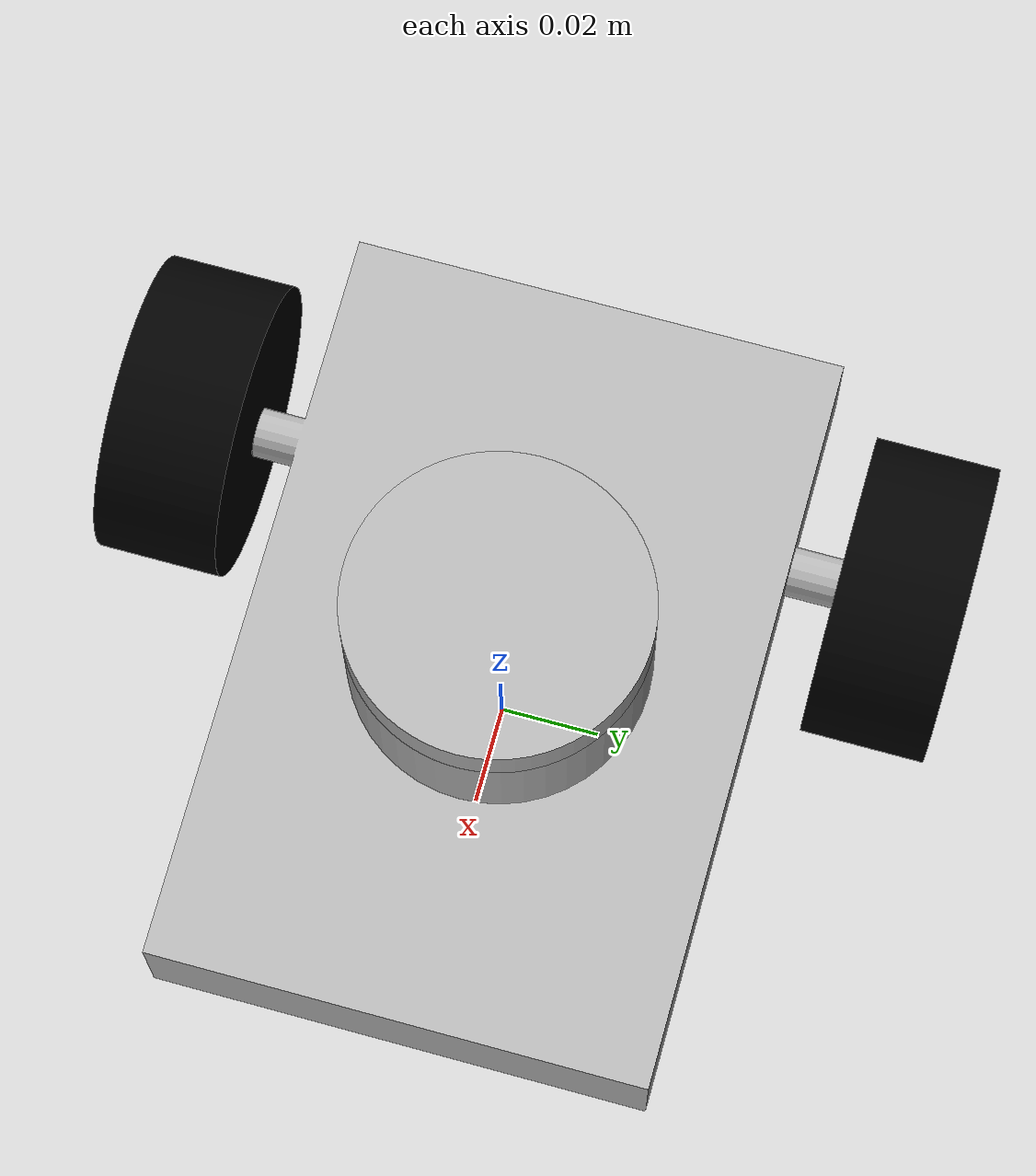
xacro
<?xml version="1.0" ?>
<robot name="rmp_bot_036" xmlns:xacro="http://www.ros.org/wiki/xacro">

<xacro:include filename="$(find rrlab_robot_description)/urdf/materials.xacro" />
<xacro:include filename="$(find rrlab_robot_description)/urdf/rmp_bot_036.trans" />
<xacro:include filename="$(find rrlab_robot_description)/urdf/rmp_bot_036.gazebo" />

<link name="base_link">
  <inertial>
    <origin xyz="-0.0001229224289252779 0.0 0.033951078072480476" rpy="0 0 0"/>
    <mass value="0.4740920288945189"/>
    <inertia ixx="0.000417" iyy="0.000828" izz="0.001117" ixy="0.0" iyz="0.0" ixz="-0.0"/>
  </inertial>
  <visual>
    <origin xyz="0 0 0" rpy="0 0 0"/>
    <geometry>
      <mesh filename="package://rrlab_robot_description/meshes/base_link.stl" scale="0.001 0.001 0.001"/>
    </geometry>
    <material name="silver"/>
  </visual>
  <collision>
    <origin xyz="0 0 0" rpy="0 0 0"/>
    <geometry>
      <mesh filename="package://rrlab_robot_description/meshes/base_link.stl" scale="0.001 0.001 0.001"/>
    </geometry>
  </collision>
</link>

<link name="right_wheel_1">
  <inertial>
    <origin xyz="-1.4932499681208355e-14 -0.012500000000000011 0.0" rpy="0 0 0"/>
    <mass value="0.06391177554646729"/>
    <inertia ixx="1.8e-05" iyy="3e-05" izz="1.8e-05" ixy="0.0" iyz="-0.0" ixz="0.0"/>
  </inertial>
  <visual>
    <origin xyz="0.035 0.06 -0.03" rpy="0 0 0"/>
    <geometry>
      <mesh filename="package://rrlab_robot_description/meshes/right_wheel_1.stl" scale="0.001 0.001 0.001"/>
    </geometry>
    <material name="black"/>
  </visual>
  <collision>
    <origin xyz="0.035 0.06 -0.03" rpy="0 0 0"/>
    <geometry>
      <mesh filename="package://rrlab_robot_description/meshes/right_wheel_1.stl" scale="0.001 0.001 0.001"/>
    </geometry>
  </collision>
</link>

<link name="left_wheel_1">
  <inertial>
    <origin xyz="-1.4932499681208355e-14 0.012499999999999997 0.0" rpy="0 0 0"/>
    <mass value="0.06391177554646729"/>
    <inertia ixx="1.8e-05" iyy="3e-05" izz="1.8e-05" ixy="-0.0" iyz="0.0" ixz="0.0"/>
  </inertial>
  <visual>
    <origin xyz="0.035 -0.06 -0.03" rpy="0 0 0"/>
    <geometry>
      <mesh filename="package://rrlab_robot_description/meshes/left_wheel_1.stl" scale="0.001 0.001 0.001"/>
    </geometry>
    <material name="black"/>
  </visual>
  <collision>
    <origin xyz="0.035 -0.06 -0.03" rpy="0 0 0"/>
    <geometry>
      <mesh filename="package://rrlab_robot_description/meshes/left_wheel_1.stl" scale="0.001 0.001 0.001"/>
    </geometry>
  </collision>
</link>

<link name="lidar_1">
  <inertial>
    <origin xyz="5.026061718855929e-18 0.0 0.0049999999999999906" rpy="0 0 0"/>
    <mass value="0.2219535209761188"/>
    <inertia ixx="5.2e-05" iyy="5.2e-05" izz="0.0001" ixy="0.0" iyz="-0.0" ixz="-0.0"/>
  </inertial>
  <visual>
    <origin xyz="-0.0 -0.0 -0.0675" rpy="0 0 0"/>
    <geometry>
      <mesh filename="package://rrlab_robot_description/meshes/lidar_1.stl" scale="0.001 0.001 0.001"/>
    </geometry>
    <material name="silver"/>
  </visual>
  <collision>
    <origin xyz="-0.0 -0.0 -0.0675" rpy="0 0 0"/>
    <geometry>
      <mesh filename="package://rrlab_robot_description/meshes/lidar_1.stl" scale="0.001 0.001 0.001"/>
    </geometry>
  </collision>
</link>

<link name="caster_1">
  <inertial>
    <origin xyz="-0.020000000000000004 -8.041698750169483e-18 -0.0067500000000000095" rpy="0 0 0"/>
    <mass value="0.06936047530503715"/>
    <inertia ixx="5e-06" iyy="5e-06" izz="7e-06" ixy="-0.0" iyz="-0.0" ixz="-0.0"/>
  </inertial>
  <visual>
    <origin xyz="-0.075 -0.0 -0.0175" rpy="0 0 0"/>
    <geometry>
      <mesh filename="package://rrlab_robot_description/meshes/caster_1.stl" scale="0.001 0.001 0.001"/>
    </geometry>
    <material name="silver"/>
  </visual>
  <collision>
    <origin xyz="-0.075 -0.0 -0.0175" rpy="0 0 0"/>
    <geometry>
      <mesh filename="package://rrlab_robot_description/meshes/caster_1.stl" scale="0.001 0.001 0.001"/>
    </geometry>
  </collision>
</link>

<joint name="right_wheel_joint" type="continuous">
  <origin xyz="-0.035 -0.06 0.03" rpy="0 0 0"/>
  <parent link="base_link"/>
  <child link="right_wheel_1"/>
  <axis xyz="0.0 1.0 0.0"/>
</joint>

<joint name="left_wheel_joint" type="continuous">
  <origin xyz="-0.035 0.06 0.03" rpy="0 0 0"/>
  <parent link="base_link"/>
  <child link="left_wheel_1"/>
  <axis xyz="0.0 1.0 0.0"/>
</joint>

<joint name="lidar_joint" type="fixed">
  <origin xyz="0.0 0.0 0.0675" rpy="0 0 0"/>
  <parent link="base_link"/>
  <child link="lidar_1"/>
</joint>

<joint name="caster_joint" type="fixed">
  <origin xyz="0.075 0.0 0.0175" rpy="0 0 0"/>
  <parent link="base_link"/>
  <child link="caster_1"/>
</joint>

</robot>

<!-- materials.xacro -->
<robot name="rmp_bot_036" xmlns:xacro="http://www.ros.org/wiki/xacro" >

<material name="silver">
  <color rgba="0.700 0.700 0.700 1.000"/>
</material>

<material name="black">
  <color rgba="0.0 0.0 0.0 1.000"/>
</material>

</robot>

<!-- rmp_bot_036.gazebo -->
<robot name="rmp_bot_036" xmlns:xacro="http://www.ros.org/wiki/xacro" >

<xacro:property name="body_color" value="Gazebo/Silver" />
<xacro:property name="wheel_color" value="Gazebo/Black" />

<gazebo>
  <plugin name="control" filename="libgazebo_ros_control.so"/>
</gazebo>
<gazebo reference="base_link">
  <material>${body_color}</material>
  <mu1>0.2</mu1>
  <mu2>0.2</mu2>
  <selfCollide>true</selfCollide>
  <gravity>true</gravity>
</gazebo>

<gazebo reference="right_wheel_1">
  <material>${wheel_color}</material>
  <mu1>1.0</mu1>
  <mu2>1.0</mu2>
  <selfCollide>true</selfCollide>
</gazebo>

<gazebo reference="left_wheel_1">
  <material>${wheel_color}</material>
  <mu1>1.0</mu1>
  <mu2>1.0</mu2>
  <selfCollide>true</selfCollide>
</gazebo>

<gazebo reference="lidar_1">
  <material>${body_color}</material>
  <mu1>0.2</mu1>
  <mu2>0.2</mu2>
  <selfCollide>true</selfCollide>
</gazebo>

<gazebo reference="caster_1">
  <material>${body_color}</material>
  <mu1>0.2</mu1>
  <mu2>0.2</mu2>
  <selfCollide>true</selfCollide>
</gazebo>

<gazebo>
  <plugin name="differential_drive_controller" filename="libgazebo_ros_diff_drive.so">

    <!-- Plugin update rate in Hz -->
    <updateRate>10</updateRate>

    <!-- Name of left joint, defaults to `left_joint` -->
    <leftJoint>left_wheel_joint</leftJoint>

    <!-- Name of right joint, defaults to `right_joint` -->
    <rightJoint>right_wheel_joint</rightJoint>

    <!-- The distance from the center of one wheel to the other, in meters, defaults to 0.34 m -->
    <wheelSeparation>0.2473</wheelSeparation>

    <!-- Diameter of the wheels, in meters, defaults to 0.15 m -->
    <wheelDiameter>0.06</wheelDiameter>

    <!-- Wheel acceleration, in rad/s^2, defaults to 0.0 rad/s^2 -->
    <wheelAcceleration>1.0</wheelAcceleration>

    <!-- Maximum torque which the wheels can produce, in Nm, defaults to 5 Nm -->
    <wheelTorque>20</wheelTorque>

    <!-- Topic to receive geometry_msgs/Twist message commands, defaults to `cmd_vel` -->
    <commandTopic>cmd_vel</commandTopic>

    <!-- Topic to publish nav_msgs/Odometry messages, defaults to `odom` -->
    <odometryTopic>odom</odometryTopic>

    <!-- Odometry frame, defaults to `odom` -->
    <odometryFrame>odom</odometryFrame>

    <!-- Robot frame to calculate odometry from, defaults to `base_footprint` -->
    <robotBaseFrame>base_link</robotBaseFrame>

    <!-- Odometry source, 0 for ENCODER, 1 for WORLD, defaults to WORLD -->
    <odometrySource>1</odometrySource>

    <!-- Set to true to publish transforms for the wheel links, defaults to false -->
    <publishWheelTF>true</publishWheelTF>

    <!-- Set to true to publish transforms for the odometry, defaults to true -->
    <publishOdom>true</publishOdom>

    <!-- Set to true to publish sensor_msgs/JointState on /joint_states for the wheel joints, defaults to false -->
    <publishWheelJointState>true</publishWheelJointState>

    <!-- Set to true to swap right and left wheels, defaults to true -->
    <legacyMode>false</legacyMode>
  </plugin>
</gazebo>
</robot>
